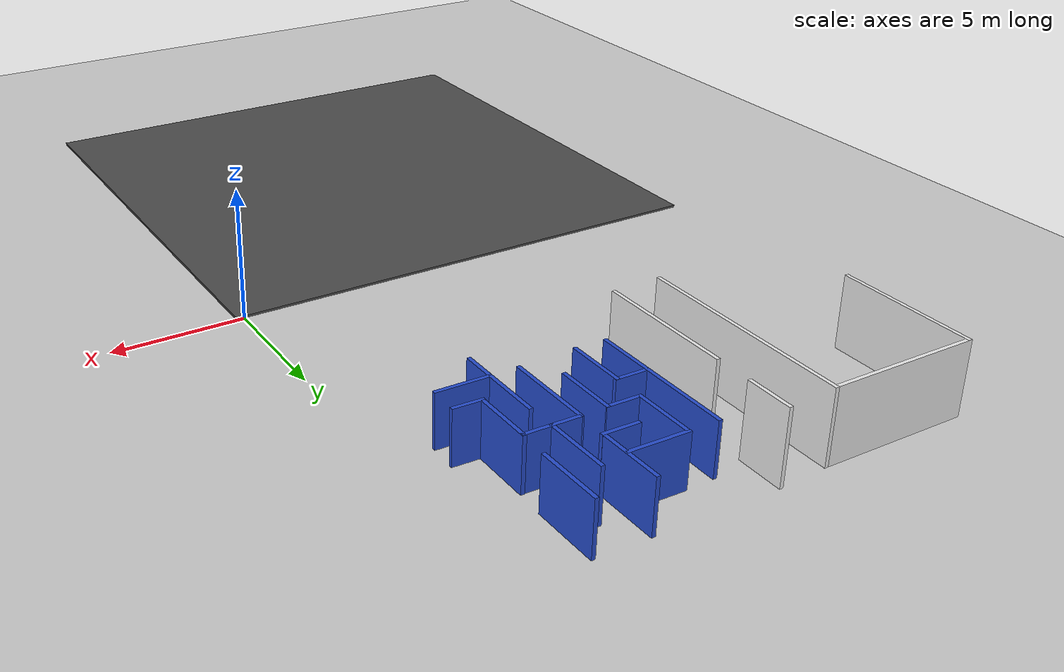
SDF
<sdf version="1.7">
 <world name="default">
  <model name="ground_plane">
   <static>1</static>
   <link name="link">
    <collision name="collision">
     <geometry><plane><normal>0 0 1</normal><size>100 100</size></plane></geometry>
     <surface><friction><ode><mu>100</mu><mu2>50</mu2></ode></friction></surface>
    </collision>
    <visual name="visual">
     <cast_shadows>0</cast_shadows>
     <geometry><plane><normal>0 0 1</normal><size>100 100</size></plane></geometry>
     <material>
      <script><uri>file://media/materials/scripts/gazebo.material</uri><name>Gazebo/Grey</name></script>
     </material>
    </visual>
    <velocity_decay><linear>0</linear><angular>0</angular></velocity_decay>
   </link>
  </model>
  <model name="asphalt_plane">
   <static>1</static>
   <link name="link">
    <collision name="collision"><geometry><box><size>20 20 0.1</size></box></geometry></collision>
    <visual name="visual">
     <cast_shadows>0</cast_shadows>
     <geometry><box><size>20 20 0.1</size></box></geometry>
     <material>
      <script>
       <uri>model://asphalt_plane/materials/scripts</uri>
       <uri>model://asphalt_plane/materials/textures</uri>
       <name>vrc/asphalt</name>
      </script>
     </material>
    </visual>
   </link>
   <pose>-9.73878 -10.1135 0 0 -0 0</pose>
  </model>
  <model name="white_wall18">
   <link name="link">
    <inertial>
     <mass>1</mass>
     <inertia>
      <ixx>0.166667</ixx>
      <ixy>0</ixy>
      <ixz>0</ixz>
      <iyy>0.166667</iyy>
      <iyz>0</iyz>
      <izz>0.166667</izz>
     </inertia>
    </inertial>
    <visual name="visual">
     <geometry><box><size>8.26846 0.139088 2.78993</size></box></geometry>
     <material>
      <script><name>Gazebo/White</name><uri>file://media/materials/scripts/gazebo.material</uri></script>
      <shader type="vertex"><normal_map>__default__</normal_map></shader>
      <ambient>1 1 1 1</ambient>
      <diffuse>1 1 1 1</diffuse>
      <specular>0 0 0 1</specular>
      <emissive>0 0 0 1</emissive>
     </material>
    </visual>
    <collision name="collision">
     <geometry><box><size>8.26846 0.139088 2.78993</size></box></geometry>
     <surface>
      <friction>
       <ode><mu>1</mu><mu2>1</mu2><fdir1>0 0 0</fdir1><slip1>0</slip1><slip2>0</slip2></ode>
       <torsional>
        <coefficient>1</coefficient>
        <patch_radius>0</patch_radius>
        <surface_radius>0</surface_radius>
        <use_patch_radius>1</use_patch_radius>
        <ode><slip>0</slip></ode>
       </torsional>
      </friction>
      <bounce><restitution_coefficient>0</restitution_coefficient><threshold>1e+06</threshold></bounce>
      <contact>
       <collide_without_contact>0</collide_without_contact>
       <collide_without_contact_bitmask>1</collide_without_contact_bitmask>
       <collide_bitmask>1</collide_bitmask>
       <ode>
        <soft_cfm>0</soft_cfm>
        <soft_erp>0.2</soft_erp>
        <kp>1e+13</kp>
        <kd>1</kd>
        <max_vel>0.01</max_vel>
        <min_depth>0</min_depth>
       </ode>
       <bullet>
        <split_impulse>1</split_impulse>
        <split_impulse_penetration_threshold>-0.01</split_impulse_penetration_threshold>
        <soft_cfm>0</soft_cfm>
        <soft_erp>0.2</soft_erp>
        <kp>1e+13</kp>
        <kd>1</kd>
       </bullet>
      </contact>
     </surface>
    </collision>
   </link>
   <static>1</static>
   <pose>-11.215 13.3404 1.43998 4e-06 1e-06 1.56978</pose>
  </model>
  <model name="white_wall15_clone_clone">
   <link name="link">
    <inertial>
     <mass>1</mass>
     <inertia>
      <ixx>0.166667</ixx>
      <ixy>0</ixy>
      <ixz>0</ixz>
      <iyy>0.166667</iyy>
      <iyz>0</iyz>
      <izz>0.166667</izz>
     </inertia>
    </inertial>
    <visual name="visual">
     <geometry><box><size>5.7215 0.139088 2.78993</size></box></geometry>
     <material>
      <script><name>Gazebo/White</name><uri>file://media/materials/scripts/gazebo.material</uri></script>
      <shader type="vertex"><normal_map>__default__</normal_map></shader>
      <ambient>1 1 1 1</ambient>
      <diffuse>1 1 1 1</diffuse>
      <specular>0 0 0 1</specular>
      <emissive>0 0 0 1</emissive>
     </material>
    </visual>
    <collision name="collision">
     <geometry><box><size>5.7215 0.139088 2.78993</size></box></geometry>
     <surface>
      <friction>
       <ode><mu>1</mu><mu2>1</mu2><fdir1>0 0 0</fdir1><slip1>0</slip1><slip2>0</slip2></ode>
       <torsional>
        <coefficient>1</coefficient>
        <patch_radius>0</patch_radius>
        <surface_radius>0</surface_radius>
        <use_patch_radius>1</use_patch_radius>
        <ode><slip>0</slip></ode>
       </torsional>
      </friction>
      <bounce><restitution_coefficient>0</restitution_coefficient><threshold>1e+06</threshold></bounce>
      <contact>
       <collide_without_contact>0</collide_without_contact>
       <collide_without_contact_bitmask>1</collide_without_contact_bitmask>
       <collide_bitmask>1</collide_bitmask>
       <ode>
        <soft_cfm>0</soft_cfm>
        <soft_erp>0.2</soft_erp>
        <kp>1e+13</kp>
        <kd>1</kd>
        <max_vel>0.01</max_vel>
        <min_depth>0</min_depth>
       </ode>
       <bullet>
        <split_impulse>1</split_impulse>
        <split_impulse_penetration_threshold>-0.01</split_impulse_penetration_threshold>
        <soft_cfm>0</soft_cfm>
        <soft_erp>0.2</soft_erp>
        <kp>1e+13</kp>
        <kd>1</kd>
       </bullet>
      </contact>
     </surface>
    </collision>
   </link>
   <static>1</static>
   <pose>-14.0062 17.4045 1.43994 -1e-06 4e-06 -0.000759</pose>
  </model>
  <model name="white_wall19">
   <link name="link">
    <inertial>
     <mass>1</mass>
     <inertia>
      <ixx>0.166667</ixx>
      <ixy>0</ixy>
      <ixz>0</ixz>
      <iyy>0.166667</iyy>
      <iyz>0</iyz>
      <izz>0.166667</izz>
     </inertia>
    </inertial>
    <visual name="visual">
     <geometry><box><size>5.22248 0.139088 2.78993</size></box></geometry>
     <material>
      <script><name>Gazebo/White</name><uri>file://media/materials/scripts/gazebo.material</uri></script>
      <shader type="vertex"><normal_map>__default__</normal_map></shader>
      <ambient>1 1 1 1</ambient>
      <diffuse>1 1 1 1</diffuse>
      <specular>0 0 0 1</specular>
      <emissive>0 0 0 1</emissive>
     </material>
    </visual>
    <collision name="collision">
     <geometry><box><size>5.22248 0.139088 2.78993</size></box></geometry>
     <surface>
      <friction>
       <ode><mu>1</mu><mu2>1</mu2><fdir1>0 0 0</fdir1><slip1>0</slip1><slip2>0</slip2></ode>
       <torsional>
        <coefficient>1</coefficient>
        <patch_radius>0</patch_radius>
        <surface_radius>0</surface_radius>
        <use_patch_radius>1</use_patch_radius>
        <ode><slip>0</slip></ode>
       </torsional>
      </friction>
      <bounce><restitution_coefficient>0</restitution_coefficient><threshold>1e+06</threshold></bounce>
      <contact>
       <collide_without_contact>0</collide_without_contact>
       <collide_without_contact_bitmask>1</collide_without_contact_bitmask>
       <collide_bitmask>1</collide_bitmask>
       <ode>
        <soft_cfm>0</soft_cfm>
        <soft_erp>0.2</soft_erp>
        <kp>1e+13</kp>
        <kd>1</kd>
        <max_vel>0.01</max_vel>
        <min_depth>0</min_depth>
       </ode>
       <bullet>
        <split_impulse>1</split_impulse>
        <split_impulse_penetration_threshold>-0.01</split_impulse_penetration_threshold>
        <soft_cfm>0</soft_cfm>
        <soft_erp>0.2</soft_erp>
        <kp>1e+13</kp>
        <kd>1</kd>
       </bullet>
      </contact>
     </surface>
    </collision>
   </link>
   <static>1</static>
   <pose>-16.8039 14.8534 1.43998 4e-06 1e-06 1.56978</pose>
  </model>
  <model name="white_wall19_clone">
   <link name="link">
    <inertial>
     <mass>1</mass>
     <inertia>
      <ixx>0.166667</ixx>
      <ixy>0</ixy>
      <ixz>0</ixz>
      <iyy>0.166667</iyy>
      <iyz>0</iyz>
      <izz>0.166667</izz>
     </inertia>
    </inertial>
    <visual name="visual">
     <geometry><box><size>5.22248 0.139088 2.78993</size></box></geometry>
     <material>
      <script><name>Gazebo/White</name><uri>file://media/materials/scripts/gazebo.material</uri></script>
      <shader type="vertex"><normal_map>__default__</normal_map></shader>
      <ambient>1 1 1 1</ambient>
      <diffuse>1 1 1 1</diffuse>
      <specular>0 0 0 1</specular>
      <emissive>0 0 0 1</emissive>
     </material>
    </visual>
    <collision name="collision">
     <geometry><box><size>5.22248 0.139088 2.78993</size></box></geometry>
     <surface>
      <friction>
       <ode><mu>1</mu><mu2>1</mu2><fdir1>0 0 0</fdir1><slip1>0</slip1><slip2>0</slip2></ode>
       <torsional>
        <coefficient>1</coefficient>
        <patch_radius>0</patch_radius>
        <surface_radius>0</surface_radius>
        <use_patch_radius>1</use_patch_radius>
        <ode><slip>0</slip></ode>
       </torsional>
      </friction>
      <bounce><restitution_coefficient>0</restitution_coefficient><threshold>1e+06</threshold></bounce>
      <contact>
       <collide_without_contact>0</collide_without_contact>
       <collide_without_contact_bitmask>1</collide_without_contact_bitmask>
       <collide_bitmask>1</collide_bitmask>
       <ode>
        <soft_cfm>0</soft_cfm>
        <soft_erp>0.2</soft_erp>
        <kp>1e+13</kp>
        <kd>1</kd>
        <max_vel>0.01</max_vel>
        <min_depth>0</min_depth>
       </ode>
       <bullet>
        <split_impulse>1</split_impulse>
        <split_impulse_penetration_threshold>-0.01</split_impulse_penetration_threshold>
        <soft_cfm>0</soft_cfm>
        <soft_erp>0.2</soft_erp>
        <kp>1e+13</kp>
        <kd>1</kd>
       </bullet>
      </contact>
     </surface>
    </collision>
   </link>
   <static>1</static>
   <pose>-9.314 11.857 1.43998 4e-06 1e-06 1.56978</pose>
  </model>
  <model name="white_wall3_clone_clone_2_clone">
   <link name="link">
    <inertial>
     <mass>1</mass>
     <inertia>
      <ixx>0.166667</ixx>
      <ixy>0</ixy>
      <ixz>0</ixz>
      <iyy>0.166667</iyy>
      <iyz>0</iyz>
      <izz>0.166667</izz>
     </inertia>
    </inertial>
    <visual name="visual">
     <geometry><box><size>1.77743 0.139088 2.78993</size></box></geometry>
     <material>
      <script><name>Gazebo/White</name><uri>file://media/materials/scripts/gazebo.material</uri></script>
      <shader type="vertex"><normal_map>__default__</normal_map></shader>
      <ambient>1 1 1 1</ambient>
      <diffuse>1 1 1 1</diffuse>
      <specular>0 0 0 1</specular>
      <emissive>0 0 0 1</emissive>
     </material>
    </visual>
    <collision name="collision">
     <geometry><box><size>1.77743 0.139088 2.78993</size></box></geometry>
     <surface>
      <friction>
       <ode><mu>1</mu><mu2>1</mu2><fdir1>0 0 0</fdir1><slip1>0</slip1><slip2>0</slip2></ode>
       <torsional>
        <coefficient>1</coefficient>
        <patch_radius>0</patch_radius>
        <surface_radius>0</surface_radius>
        <use_patch_radius>1</use_patch_radius>
        <ode><slip>0</slip></ode>
       </torsional>
      </friction>
      <bounce><restitution_coefficient>0</restitution_coefficient><threshold>1e+06</threshold></bounce>
      <contact>
       <collide_without_contact>0</collide_without_contact>
       <collide_without_contact_bitmask>1</collide_without_contact_bitmask>
       <collide_bitmask>1</collide_bitmask>
       <ode>
        <soft_cfm>0</soft_cfm>
        <soft_erp>0.2</soft_erp>
        <kp>1e+13</kp>
        <kd>1</kd>
        <max_vel>0.01</max_vel>
        <min_depth>0</min_depth>
       </ode>
       <bullet>
        <split_impulse>1</split_impulse>
        <split_impulse_penetration_threshold>-0.01</split_impulse_penetration_threshold>
        <soft_cfm>0</soft_cfm>
        <soft_erp>0.2</soft_erp>
        <kp>1e+13</kp>
        <kd>1</kd>
       </bullet>
      </contact>
     </surface>
    </collision>
   </link>
   <static>1</static>
   <pose>-9.30073 16.7187 1.43995 4e-06 1e-06 1.56402</pose>
  </model>
  <model name="blue_wall_1_0">
   <link name="link">
    <inertial>
     <mass>1.23974</mass>
     <inertia>
      <ixx>1.75708</ixx>
      <ixy>0</ixy>
      <ixz>0</ixz>
      <iyy>0.935051</iyy>
      <iyz>0</iyz>
      <izz>0.826375</izz>
     </inertia>
    </inertial>
    <visual name="visual">
     <geometry><box><size>0.145074 5.58767 3.00495</size></box></geometry>
     <material>
      <script><name>Gazebo/Blue</name><uri>file://media/materials/scripts/gazebo.material</uri></script>
      <shader type="vertex"><normal_map>__default__</normal_map></shader>
      <ambient>0 0 1 1</ambient>
      <diffuse>0 0 1 1</diffuse>
      <specular>0.1 0.1 0.1 1</specular>
      <emissive>0 0 0 1</emissive>
     </material>
    </visual>
    <collision name="collision">
     <geometry><box><size>0.145074 5.58767 3.00495</size></box></geometry>
     <surface>
      <friction>
       <ode><mu>1</mu><mu2>1</mu2><fdir1>0 0 0</fdir1><slip1>0</slip1><slip2>0</slip2></ode>
       <torsional>
        <coefficient>1</coefficient>
        <patch_radius>0</patch_radius>
        <surface_radius>0</surface_radius>
        <use_patch_radius>1</use_patch_radius>
        <ode><slip>0</slip></ode>
       </torsional>
      </friction>
      <bounce><restitution_coefficient>0</restitution_coefficient><threshold>1e+06</threshold></bounce>
      <contact>
       <collide_without_contact>0</collide_without_contact>
       <collide_without_contact_bitmask>1</collide_without_contact_bitmask>
       <collide_bitmask>1</collide_bitmask>
       <ode>
        <soft_cfm>0</soft_cfm>
        <soft_erp>0.2</soft_erp>
        <kp>1e+13</kp>
        <kd>1</kd>
        <max_vel>0.01</max_vel>
        <min_depth>0</min_depth>
       </ode>
       <bullet>
        <split_impulse>1</split_impulse>
        <split_impulse_penetration_threshold>-0.01</split_impulse_penetration_threshold>
        <soft_cfm>0</soft_cfm>
        <soft_erp>0.2</soft_erp>
        <kp>1e+13</kp>
        <kd>1</kd>
       </bullet>
      </contact>
     </surface>
    </collision>
   </link>
   <static>1</static>
   <pose>-8.03676 13.3623 0.5 0 -0 0</pose>
  </model>
  <model name="blue_wall_2_0">
   <link name="link">
    <inertial>
     <mass>1.23974</mass>
     <inertia>
      <ixx>1.75708</ixx>
      <ixy>0</ixy>
      <ixz>0</ixz>
      <iyy>0.935051</iyy>
      <iyz>0</iyz>
      <izz>0.826375</izz>
     </inertia>
    </inertial>
    <visual name="visual">
     <geometry><box><size>0.145074 2.28839 3.00495</size></box></geometry>
     <material>
      <script><name>Gazebo/Blue</name><uri>file://media/materials/scripts/gazebo.material</uri></script>
      <shader type="vertex"><normal_map>__default__</normal_map></shader>
      <ambient>0 0 1 1</ambient>
      <diffuse>0 0 1 1</diffuse>
      <specular>0.1 0.1 0.1 1</specular>
      <emissive>0 0 0 1</emissive>
     </material>
    </visual>
    <collision name="collision">
     <geometry><box><size>0.145074 2.28839 3.00495</size></box></geometry>
     <surface>
      <friction>
       <ode><mu>1</mu><mu2>1</mu2><fdir1>0 0 0</fdir1><slip1>0</slip1><slip2>0</slip2></ode>
       <torsional>
        <coefficient>1</coefficient>
        <patch_radius>0</patch_radius>
        <surface_radius>0</surface_radius>
        <use_patch_radius>1</use_patch_radius>
        <ode><slip>0</slip></ode>
       </torsional>
      </friction>
      <bounce><restitution_coefficient>0</restitution_coefficient><threshold>1e+06</threshold></bounce>
      <contact>
       <collide_without_contact>0</collide_without_contact>
       <collide_without_contact_bitmask>1</collide_without_contact_bitmask>
       <collide_bitmask>1</collide_bitmask>
       <ode>
        <soft_cfm>0</soft_cfm>
        <soft_erp>0.2</soft_erp>
        <kp>1e+13</kp>
        <kd>1</kd>
        <max_vel>0.01</max_vel>
        <min_depth>0</min_depth>
       </ode>
       <bullet>
        <split_impulse>1</split_impulse>
        <split_impulse_penetration_threshold>-0.01</split_impulse_penetration_threshold>
        <soft_cfm>0</soft_cfm>
        <soft_erp>0.2</soft_erp>
        <kp>1e+13</kp>
        <kd>1</kd>
       </bullet>
      </contact>
     </surface>
    </collision>
   </link>
   <static>1</static>
   <pose>-6.87676 11.6612 0.5 0 -0 0</pose>
  </model>
  <model name="blue_wall_3">
   <link name="link">
    <inertial>
     <mass>1.23974</mass>
     <inertia>
      <ixx>1.75708</ixx>
      <ixy>0</ixy>
      <ixz>0</ixz>
      <iyy>0.935051</iyy>
      <iyz>0</iyz>
      <izz>0.826375</izz>
     </inertia>
    </inertial>
    <visual name="visual">
     <geometry><box><size>0.145074 1.30289 3.00495</size></box></geometry>
     <material>
      <script><name>Gazebo/Blue</name><uri>file://media/materials/scripts/gazebo.material</uri></script>
      <shader type="vertex"><normal_map>__default__</normal_map></shader>
      <ambient>0 0 1 1</ambient>
      <diffuse>0 0 1 1</diffuse>
      <specular>0.1 0.1 0.1 1</specular>
      <emissive>0 0 0 1</emissive>
     </material>
    </visual>
    <collision name="collision">
     <geometry><box><size>0.145074 1.30289 3.00495</size></box></geometry>
     <surface>
      <friction>
       <ode><mu>1</mu><mu2>1</mu2><fdir1>0 0 0</fdir1><slip1>0</slip1><slip2>0</slip2></ode>
       <torsional>
        <coefficient>1</coefficient>
        <patch_radius>0</patch_radius>
        <surface_radius>0</surface_radius>
        <use_patch_radius>1</use_patch_radius>
        <ode><slip>0</slip></ode>
       </torsional>
      </friction>
      <bounce><restitution_coefficient>0</restitution_coefficient><threshold>1e+06</threshold></bounce>
      <contact>
       <collide_without_contact>0</collide_without_contact>
       <collide_without_contact_bitmask>1</collide_without_contact_bitmask>
       <collide_bitmask>1</collide_bitmask>
       <ode>
        <soft_cfm>0</soft_cfm>
        <soft_erp>0.2</soft_erp>
        <kp>1e+13</kp>
        <kd>1</kd>
        <max_vel>0.01</max_vel>
        <min_depth>0</min_depth>
       </ode>
       <bullet>
        <split_impulse>1</split_impulse>
        <split_impulse_penetration_threshold>-0.01</split_impulse_penetration_threshold>
        <soft_cfm>0</soft_cfm>
        <soft_erp>0.2</soft_erp>
        <kp>1e+13</kp>
        <kd>1</kd>
       </bullet>
      </contact>
     </surface>
    </collision>
   </link>
   <static>1</static>
   <pose>-7.44047 12.7488 0.5 0 -0 1.55679</pose>
  </model>
  <model name="blue_wall_4">
   <link name="link">
    <inertial>
     <mass>1.23974</mass>
     <inertia>
      <ixx>1.75708</ixx>
      <ixy>0</ixy>
      <ixz>0</ixz>
      <iyy>0.935051</iyy>
      <iyz>0</iyz>
      <izz>0.826375</izz>
     </inertia>
    </inertial>
    <visual name="visual">
     <geometry><box><size>0.145074 2.27049 3.00495</size></box></geometry>
     <material>
      <script><name>Gazebo/Blue</name><uri>file://media/materials/scripts/gazebo.material</uri></script>
      <shader type="vertex"><normal_map>__default__</normal_map></shader>
      <ambient>0 0 1 1</ambient>
      <diffuse>0 0 1 1</diffuse>
      <specular>0.1 0.1 0.1 1</specular>
      <emissive>0 0 0 1</emissive>
     </material>
    </visual>
    <collision name="collision">
     <geometry><box><size>0.145074 2.27049 3.00495</size></box></geometry>
     <surface>
      <friction>
       <ode><mu>1</mu><mu2>1</mu2><fdir1>0 0 0</fdir1><slip1>0</slip1><slip2>0</slip2></ode>
       <torsional>
        <coefficient>1</coefficient>
        <patch_radius>0</patch_radius>
        <surface_radius>0</surface_radius>
        <use_patch_radius>1</use_patch_radius>
        <ode><slip>0</slip></ode>
       </torsional>
      </friction>
      <bounce><restitution_coefficient>0</restitution_coefficient><threshold>1e+06</threshold></bounce>
      <contact>
       <collide_without_contact>0</collide_without_contact>
       <collide_without_contact_bitmask>1</collide_without_contact_bitmask>
       <collide_bitmask>1</collide_bitmask>
       <ode>
        <soft_cfm>0</soft_cfm>
        <soft_erp>0.2</soft_erp>
        <kp>1e+13</kp>
        <kd>1</kd>
        <max_vel>0.01</max_vel>
        <min_depth>0</min_depth>
       </ode>
       <bullet>
        <split_impulse>1</split_impulse>
        <split_impulse_penetration_threshold>-0.01</split_impulse_penetration_threshold>
        <soft_cfm>0</soft_cfm>
        <soft_erp>0.2</soft_erp>
        <kp>1e+13</kp>
        <kd>1</kd>
       </bullet>
      </contact>
     </surface>
    </collision>
   </link>
   <static>1</static>
   <pose>-6.87353 14.9517 0.5 0 -0 0</pose>
  </model>
  <model name="blue_wall_3_clone">
   <link name="link">
    <inertial>
     <mass>1.23974</mass>
     <inertia>
      <ixx>1.75708</ixx>
      <ixy>0</ixy>
      <ixz>0</ixz>
      <iyy>0.935051</iyy>
      <iyz>0</iyz>
      <izz>0.826375</izz>
     </inertia>
    </inertial>
    <visual name="visual">
     <geometry><box><size>0.145074 1.30289 3.00495</size></box></geometry>
     <material>
      <script><name>Gazebo/Blue</name><uri>file://media/materials/scripts/gazebo.material</uri></script>
      <shader type="vertex"><normal_map>__default__</normal_map></shader>
      <ambient>0 0 1 1</ambient>
      <diffuse>0 0 1 1</diffuse>
      <specular>0.1 0.1 0.1 1</specular>
      <emissive>0 0 0 1</emissive>
     </material>
    </visual>
    <collision name="collision">
     <geometry><box><size>0.145074 1.30289 3.00495</size></box></geometry>
     <surface>
      <friction>
       <ode><mu>1</mu><mu2>1</mu2><fdir1>0 0 0</fdir1><slip1>0</slip1><slip2>0</slip2></ode>
       <torsional>
        <coefficient>1</coefficient>
        <patch_radius>0</patch_radius>
        <surface_radius>0</surface_radius>
        <use_patch_radius>1</use_patch_radius>
        <ode><slip>0</slip></ode>
       </torsional>
      </friction>
      <bounce><restitution_coefficient>0</restitution_coefficient><threshold>1e+06</threshold></bounce>
      <contact>
       <collide_without_contact>0</collide_without_contact>
       <collide_without_contact_bitmask>1</collide_without_contact_bitmask>
       <collide_bitmask>1</collide_bitmask>
       <ode>
        <soft_cfm>0</soft_cfm>
        <soft_erp>0.2</soft_erp>
        <kp>1e+13</kp>
        <kd>1</kd>
        <max_vel>0.01</max_vel>
        <min_depth>0</min_depth>
       </ode>
       <bullet>
        <split_impulse>1</split_impulse>
        <split_impulse_penetration_threshold>-0.01</split_impulse_penetration_threshold>
        <soft_cfm>0</soft_cfm>
        <soft_erp>0.2</soft_erp>
        <kp>1e+13</kp>
        <kd>1</kd>
       </bullet>
      </contact>
     </surface>
    </collision>
   </link>
   <static>1</static>
   <pose>-6.24855 13.8791 0.5 0 -0 1.55679</pose>
  </model>
  <model name="blue_wall_2_0_clone_0">
   <link name="link">
    <inertial>
     <mass>1.23974</mass>
     <inertia>
      <ixx>1.75708</ixx>
      <ixy>0</ixy>
      <ixz>0</ixz>
      <iyy>0.935051</iyy>
      <iyz>0</iyz>
      <izz>0.826375</izz>
     </inertia>
    </inertial>
    <visual name="visual">
     <geometry><box><size>0.145074 2.28839 3.00495</size></box></geometry>
     <material>
      <script><name>Gazebo/Blue</name><uri>file://media/materials/scripts/gazebo.material</uri></script>
      <shader type="vertex"><normal_map>__default__</normal_map></shader>
      <ambient>0 0 1 1</ambient>
      <diffuse>0 0 1 1</diffuse>
      <specular>0.1 0.1 0.1 1</specular>
      <emissive>0 0 0 1</emissive>
     </material>
    </visual>
    <collision name="collision">
     <geometry><box><size>0.145074 2.28839 3.00495</size></box></geometry>
     <surface>
      <friction>
       <ode><mu>1</mu><mu2>1</mu2><fdir1>0 0 0</fdir1><slip1>0</slip1><slip2>0</slip2></ode>
       <torsional>
        <coefficient>1</coefficient>
        <patch_radius>0</patch_radius>
        <surface_radius>0</surface_radius>
        <use_patch_radius>1</use_patch_radius>
        <ode><slip>0</slip></ode>
       </torsional>
      </friction>
      <bounce><restitution_coefficient>0</restitution_coefficient><threshold>1e+06</threshold></bounce>
      <contact>
       <collide_without_contact>0</collide_without_contact>
       <collide_without_contact_bitmask>1</collide_without_contact_bitmask>
       <collide_bitmask>1</collide_bitmask>
       <ode>
        <soft_cfm>0</soft_cfm>
        <soft_erp>0.2</soft_erp>
        <kp>1e+13</kp>
        <kd>1</kd>
        <max_vel>0.01</max_vel>
        <min_depth>0</min_depth>
       </ode>
       <bullet>
        <split_impulse>1</split_impulse>
        <split_impulse_penetration_threshold>-0.01</split_impulse_penetration_threshold>
        <soft_cfm>0</soft_cfm>
        <soft_erp>0.2</soft_erp>
        <kp>1e+13</kp>
        <kd>1</kd>
       </bullet>
      </contact>
     </surface>
    </collision>
   </link>
   <static>1</static>
   <pose>-5.66948 12.7849 0.5 0 -0 0</pose>
  </model>
  <model name="blue_wall_6">
   <link name="link">
    <inertial>
     <mass>1.23974</mass>
     <inertia>
      <ixx>1.75708</ixx>
      <ixy>0</ixy>
      <ixz>0</ixz>
      <iyy>0.935051</iyy>
      <iyz>0</iyz>
      <izz>0.826375</izz>
     </inertia>
    </inertial>
    <visual name="visual">
     <geometry><box><size>0.145074 2.28942 3.00495</size></box></geometry>
     <material>
      <script><name>Gazebo/Blue</name><uri>file://media/materials/scripts/gazebo.material</uri></script>
      <shader type="vertex"><normal_map>__default__</normal_map></shader>
      <ambient>0 0 1 1</ambient>
      <diffuse>0 0 1 1</diffuse>
      <specular>0.1 0.1 0.1 1</specular>
      <emissive>0 0 0 1</emissive>
     </material>
    </visual>
    <collision name="collision">
     <geometry><box><size>0.145074 2.28942 3.00495</size></box></geometry>
     <surface>
      <friction>
       <ode><mu>1</mu><mu2>1</mu2><fdir1>0 0 0</fdir1><slip1>0</slip1><slip2>0</slip2></ode>
       <torsional>
        <coefficient>1</coefficient>
        <patch_radius>0</patch_radius>
        <surface_radius>0</surface_radius>
        <use_patch_radius>1</use_patch_radius>
        <ode><slip>0</slip></ode>
       </torsional>
      </friction>
      <bounce><restitution_coefficient>0</restitution_coefficient><threshold>1e+06</threshold></bounce>
      <contact>
       <collide_without_contact>0</collide_without_contact>
       <collide_without_contact_bitmask>1</collide_without_contact_bitmask>
       <collide_bitmask>1</collide_bitmask>
       <ode>
        <soft_cfm>0</soft_cfm>
        <soft_erp>0.2</soft_erp>
        <kp>1e+13</kp>
        <kd>1</kd>
        <max_vel>0.01</max_vel>
        <min_depth>0</min_depth>
       </ode>
       <bullet>
        <split_impulse>1</split_impulse>
        <split_impulse_penetration_threshold>-0.01</split_impulse_penetration_threshold>
        <soft_cfm>0</soft_cfm>
        <soft_erp>0.2</soft_erp>
        <kp>1e+13</kp>
        <kd>1</kd>
       </bullet>
      </contact>
     </surface>
    </collision>
   </link>
   <static>1</static>
   <pose>-5.80282 16.1066 0.5 0 -0 1.55679</pose>
  </model>
  <model name="blue_wall_7">
   <link name="link">
    <inertial>
     <mass>1.23974</mass>
     <inertia>
      <ixx>1.75708</ixx>
      <ixy>0</ixy>
      <ixz>0</ixz>
      <iyy>0.935051</iyy>
      <iyz>0</iyz>
      <izz>0.826375</izz>
     </inertia>
    </inertial>
    <visual name="visual">
     <geometry><box><size>0.145074 3.37746 3.00495</size></box></geometry>
     <material>
      <script><name>Gazebo/Blue</name><uri>file://media/materials/scripts/gazebo.material</uri></script>
      <shader type="vertex"><normal_map>__default__</normal_map></shader>
      <ambient>0 0 1 1</ambient>
      <diffuse>0 0 1 1</diffuse>
      <specular>0.1 0.1 0.1 1</specular>
      <emissive>0 0 0 1</emissive>
     </material>
    </visual>
    <collision name="collision">
     <geometry><box><size>0.145074 3.37746 3.00495</size></box></geometry>
     <surface>
      <friction>
       <ode><mu>1</mu><mu2>1</mu2><fdir1>0 0 0</fdir1><slip1>0</slip1><slip2>0</slip2></ode>
       <torsional>
        <coefficient>1</coefficient>
        <patch_radius>0</patch_radius>
        <surface_radius>0</surface_radius>
        <use_patch_radius>1</use_patch_radius>
        <ode><slip>0</slip></ode>
       </torsional>
      </friction>
      <bounce><restitution_coefficient>0</restitution_coefficient><threshold>1e+06</threshold></bounce>
      <contact>
       <collide_without_contact>0</collide_without_contact>
       <collide_without_contact_bitmask>1</collide_without_contact_bitmask>
       <collide_bitmask>1</collide_bitmask>
       <ode>
        <soft_cfm>0</soft_cfm>
        <soft_erp>0.2</soft_erp>
        <kp>1e+13</kp>
        <kd>1</kd>
        <max_vel>0.01</max_vel>
        <min_depth>0</min_depth>
       </ode>
       <bullet>
        <split_impulse>1</split_impulse>
        <split_impulse_penetration_threshold>-0.01</split_impulse_penetration_threshold>
        <soft_cfm>0</soft_cfm>
        <soft_erp>0.2</soft_erp>
        <kp>1e+13</kp>
        <kd>1</kd>
       </bullet>
      </contact>
     </surface>
    </collision>
   </link>
   <static>1</static>
   <pose>-4.68429 12.282 0.5 0 -0 0</pose>
  </model>
  <model name="blue_wall_5">
   <link name="link">
    <inertial>
     <mass>1.23974</mass>
     <inertia>
      <ixx>1.75708</ixx>
      <ixy>0</ixy>
      <ixz>0</ixz>
      <iyy>0.935051</iyy>
      <iyz>0</iyz>
      <izz>0.826375</izz>
     </inertia>
    </inertial>
    <visual name="visual">
     <geometry><box><size>0.145074 1.38593 3.00495</size></box></geometry>
     <material>
      <script><name>Gazebo/Blue</name><uri>file://media/materials/scripts/gazebo.material</uri></script>
      <shader type="vertex"><normal_map>__default__</normal_map></shader>
      <ambient>0 0 1 1</ambient>
      <diffuse>0 0 1 1</diffuse>
      <specular>0.1 0.1 0.1 1</specular>
      <emissive>0 0 0 1</emissive>
     </material>
    </visual>
    <collision name="collision">
     <geometry><box><size>0.145074 1.38593 3.00495</size></box></geometry>
     <surface>
      <friction>
       <ode><mu>1</mu><mu2>1</mu2><fdir1>0 0 0</fdir1><slip1>0</slip1><slip2>0</slip2></ode>
       <torsional>
        <coefficient>1</coefficient>
        <patch_radius>0</patch_radius>
        <surface_radius>0</surface_radius>
        <use_patch_radius>1</use_patch_radius>
        <ode><slip>0</slip></ode>
       </torsional>
      </friction>
      <bounce><restitution_coefficient>0</restitution_coefficient><threshold>1e+06</threshold></bounce>
      <contact>
       <collide_without_contact>0</collide_without_contact>
       <collide_without_contact_bitmask>1</collide_without_contact_bitmask>
       <collide_bitmask>1</collide_bitmask>
       <ode>
        <soft_cfm>0</soft_cfm>
        <soft_erp>0.2</soft_erp>
        <kp>1e+13</kp>
        <kd>1</kd>
        <max_vel>0.01</max_vel>
        <min_depth>0</min_depth>
       </ode>
       <bullet>
        <split_impulse>1</split_impulse>
        <split_impulse_penetration_threshold>-0.01</split_impulse_penetration_threshold>
        <soft_cfm>0</soft_cfm>
        <soft_erp>0.2</soft_erp>
        <kp>1e+13</kp>
        <kd>1</kd>
       </bullet>
      </contact>
     </surface>
    </collision>
   </link>
   <static>1</static>
   <pose>-5.28893 15.0192 0.5 0 -0 1.55679</pose>
  </model>
  <model name="blue_wall_8">
   <link name="link">
    <inertial>
     <mass>1.23974</mass>
     <inertia>
      <ixx>1.75708</ixx>
      <ixy>0</ixy>
      <ixz>0</ixz>
      <iyy>0.935051</iyy>
      <iyz>0</iyz>
      <izz>0.826375</izz>
     </inertia>
    </inertial>
    <visual name="visual">
     <geometry><box><size>0.145074 2.49484 3.00495</size></box></geometry>
     <material>
      <script><name>Gazebo/Blue</name><uri>file://media/materials/scripts/gazebo.material</uri></script>
      <shader type="vertex"><normal_map>__default__</normal_map></shader>
      <ambient>0 0 1 1</ambient>
      <diffuse>0 0 1 1</diffuse>
      <specular>0.1 0.1 0.1 1</specular>
      <emissive>0 0 0 1</emissive>
     </material>
    </visual>
    <collision name="collision">
     <geometry><box><size>0.145074 2.49484 3.00495</size></box></geometry>
     <surface>
      <friction>
       <ode><mu>1</mu><mu2>1</mu2><fdir1>0 0 0</fdir1><slip1>0</slip1><slip2>0</slip2></ode>
       <torsional>
        <coefficient>1</coefficient>
        <patch_radius>0</patch_radius>
        <surface_radius>0</surface_radius>
        <use_patch_radius>1</use_patch_radius>
        <ode><slip>0</slip></ode>
       </torsional>
      </friction>
      <bounce><restitution_coefficient>0</restitution_coefficient><threshold>1e+06</threshold></bounce>
      <contact>
       <collide_without_contact>0</collide_without_contact>
       <collide_without_contact_bitmask>1</collide_without_contact_bitmask>
       <collide_bitmask>1</collide_bitmask>
       <ode>
        <soft_cfm>0</soft_cfm>
        <soft_erp>0.2</soft_erp>
        <kp>1e+13</kp>
        <kd>1</kd>
        <max_vel>0.01</max_vel>
        <min_depth>0</min_depth>
       </ode>
       <bullet>
        <split_impulse>1</split_impulse>
        <split_impulse_penetration_threshold>-0.01</split_impulse_penetration_threshold>
        <soft_cfm>0</soft_cfm>
        <soft_erp>0.2</soft_erp>
        <kp>1e+13</kp>
        <kd>1</kd>
       </bullet>
      </contact>
     </surface>
    </collision>
   </link>
   <static>1</static>
   <pose>-4.68225 16.2367 0.5 0 0 -3.13185</pose>
  </model>
  <model name="blue_wall_8_clone">
   <link name="link">
    <inertial>
     <mass>1.23974</mass>
     <inertia>
      <ixx>1.75708</ixx>
      <ixy>0</ixy>
      <ixz>0</ixz>
      <iyy>0.935051</iyy>
      <iyz>0</iyz>
      <izz>0.826375</izz>
     </inertia>
    </inertial>
    <visual name="visual">
     <geometry><box><size>0.145074 2.49484 3.00495</size></box></geometry>
     <material>
      <script><name>Gazebo/Blue</name><uri>file://media/materials/scripts/gazebo.material</uri></script>
      <shader type="vertex"><normal_map>__default__</normal_map></shader>
      <ambient>0 0 1 1</ambient>
      <diffuse>0 0 1 1</diffuse>
      <specular>0.1 0.1 0.1 1</specular>
      <emissive>0 0 0 1</emissive>
     </material>
    </visual>
    <collision name="collision">
     <geometry><box><size>0.145074 2.49484 3.00495</size></box></geometry>
     <surface>
      <friction>
       <ode><mu>1</mu><mu2>1</mu2><fdir1>0 0 0</fdir1><slip1>0</slip1><slip2>0</slip2></ode>
       <torsional>
        <coefficient>1</coefficient>
        <patch_radius>0</patch_radius>
        <surface_radius>0</surface_radius>
        <use_patch_radius>1</use_patch_radius>
        <ode><slip>0</slip></ode>
       </torsional>
      </friction>
      <bounce><restitution_coefficient>0</restitution_coefficient><threshold>1e+06</threshold></bounce>
      <contact>
       <collide_without_contact>0</collide_without_contact>
       <collide_without_contact_bitmask>1</collide_without_contact_bitmask>
       <collide_bitmask>1</collide_bitmask>
       <ode>
        <soft_cfm>0</soft_cfm>
        <soft_erp>0.2</soft_erp>
        <kp>1e+13</kp>
        <kd>1</kd>
        <max_vel>0.01</max_vel>
        <min_depth>0</min_depth>
       </ode>
       <bullet>
        <split_impulse>1</split_impulse>
        <split_impulse_penetration_threshold>-0.01</split_impulse_penetration_threshold>
        <soft_cfm>0</soft_cfm>
        <soft_erp>0.2</soft_erp>
        <kp>1e+13</kp>
        <kd>1</kd>
       </bullet>
      </contact>
     </surface>
    </collision>
   </link>
   <static>1</static>
   <pose>-3.6805 15.0653 0.5 0 0 -3.13185</pose>
  </model>
  <model name="blue_wall_9_clone">
   <link name="link">
    <inertial>
     <mass>1.23974</mass>
     <inertia>
      <ixx>1.75708</ixx>
      <ixy>0</ixy>
      <ixz>0</ixz>
      <iyy>0.935051</iyy>
      <iyz>0</iyz>
      <izz>0.826375</izz>
     </inertia>
    </inertial>
    <visual name="visual">
     <geometry><box><size>0.145074 2.05737 3.00495</size></box></geometry>
     <material>
      <script><name>Gazebo/Blue</name><uri>file://media/materials/scripts/gazebo.material</uri></script>
      <shader type="vertex"><normal_map>__default__</normal_map></shader>
      <ambient>0 0 1 1</ambient>
      <diffuse>0 0 1 1</diffuse>
      <specular>0.1 0.1 0.1 1</specular>
      <emissive>0 0 0 1</emissive>
     </material>
    </visual>
    <collision name="collision">
     <geometry><box><size>0.145074 2.05737 3.00495</size></box></geometry>
     <surface>
      <friction>
       <ode><mu>1</mu><mu2>1</mu2><fdir1>0 0 0</fdir1><slip1>0</slip1><slip2>0</slip2></ode>
       <torsional>
        <coefficient>1</coefficient>
        <patch_radius>0</patch_radius>
        <surface_radius>0</surface_radius>
        <use_patch_radius>1</use_patch_radius>
        <ode><slip>0</slip></ode>
       </torsional>
      </friction>
      <bounce><restitution_coefficient>0</restitution_coefficient><threshold>1e+06</threshold></bounce>
      <contact>
       <collide_without_contact>0</collide_without_contact>
       <collide_without_contact_bitmask>1</collide_without_contact_bitmask>
       <collide_bitmask>1</collide_bitmask>
       <ode>
        <soft_cfm>0</soft_cfm>
        <soft_erp>0.2</soft_erp>
        <kp>1e+13</kp>
        <kd>1</kd>
        <max_vel>0.01</max_vel>
        <min_depth>0</min_depth>
       </ode>
       <bullet>
        <split_impulse>1</split_impulse>
        <split_impulse_penetration_threshold>-0.01</split_impulse_penetration_threshold>
        <soft_cfm>0</soft_cfm>
        <soft_erp>0.2</soft_erp>
        <kp>1e+13</kp>
        <kd>1</kd>
       </bullet>
      </contact>
     </surface>
    </collision>
   </link>
   <static>1</static>
   <pose>-2.66073 10.6374 0.5 0 -0 1.55679</pose>
  </model>
  <model name="blue_wall_9">
   <link name="link">
    <inertial>
     <mass>1.23974</mass>
     <inertia>
      <ixx>1.75708</ixx>
      <ixy>0</ixy>
      <ixz>0</ixz>
      <iyy>0.935051</iyy>
      <iyz>0</iyz>
      <izz>0.826375</izz>
     </inertia>
    </inertial>
    <visual name="visual">
     <geometry><box><size>0.145074 2.05737 3.00495</size></box></geometry>
     <material>
      <script><name>Gazebo/Blue</name><uri>file://media/materials/scripts/gazebo.material</uri></script>
      <shader type="vertex"><normal_map>__default__</normal_map></shader>
      <ambient>0 0 1 1</ambient>
      <diffuse>0 0 1 1</diffuse>
      <specular>0.1 0.1 0.1 1</specular>
      <emissive>0 0 0 1</emissive>
     </material>
    </visual>
    <collision name="collision">
     <geometry><box><size>0.145074 2.05737 3.00495</size></box></geometry>
     <surface>
      <friction>
       <ode><mu>1</mu><mu2>1</mu2><fdir1>0 0 0</fdir1><slip1>0</slip1><slip2>0</slip2></ode>
       <torsional>
        <coefficient>1</coefficient>
        <patch_radius>0</patch_radius>
        <surface_radius>0</surface_radius>
        <use_patch_radius>1</use_patch_radius>
        <ode><slip>0</slip></ode>
       </torsional>
      </friction>
      <bounce><restitution_coefficient>0</restitution_coefficient><threshold>1e+06</threshold></bounce>
      <contact>
       <collide_without_contact>0</collide_without_contact>
       <collide_without_contact_bitmask>1</collide_without_contact_bitmask>
       <collide_bitmask>1</collide_bitmask>
       <ode>
        <soft_cfm>0</soft_cfm>
        <soft_erp>0.2</soft_erp>
        <kp>1e+13</kp>
        <kd>1</kd>
        <max_vel>0.01</max_vel>
        <min_depth>0</min_depth>
       </ode>
       <bullet>
        <split_impulse>1</split_impulse>
        <split_impulse_penetration_threshold>-0.01</split_impulse_penetration_threshold>
        <soft_cfm>0</soft_cfm>
        <soft_erp>0.2</soft_erp>
        <kp>1e+13</kp>
        <kd>1</kd>
       </bullet>
      </contact>
     </surface>
    </collision>
   </link>
   <static>1</static>
   <pose>-3.66191 13.8923 0.5 0 -0 1.55679</pose>
  </model>
  <model name="blue_wall_3_clone_0_clone">
   <link name="link">
    <inertial>
     <mass>1.23974</mass>
     <inertia>
      <ixx>1.75708</ixx>
      <ixy>0</ixy>
      <ixz>0</ixz>
      <iyy>0.935051</iyy>
      <iyz>0</iyz>
      <izz>0.826375</izz>
     </inertia>
    </inertial>
    <visual name="visual">
     <geometry><box><size>0.145074 1.16671 3.00495</size></box></geometry>
     <material>
      <script><name>Gazebo/Blue</name><uri>file://media/materials/scripts/gazebo.material</uri></script>
      <shader type="vertex"><normal_map>__default__</normal_map></shader>
      <ambient>0 0 1 1</ambient>
      <diffuse>0 0 1 1</diffuse>
      <specular>0.1 0.1 0.1 1</specular>
      <emissive>0 0 0 1</emissive>
     </material>
    </visual>
    <collision name="collision">
     <geometry><box><size>0.145074 1.16671 3.00495</size></box></geometry>
     <surface>
      <friction>
       <ode><mu>1</mu><mu2>1</mu2><fdir1>0 0 0</fdir1><slip1>0</slip1><slip2>0</slip2></ode>
       <torsional>
        <coefficient>1</coefficient>
        <patch_radius>0</patch_radius>
        <surface_radius>0</surface_radius>
        <use_patch_radius>1</use_patch_radius>
        <ode><slip>0</slip></ode>
       </torsional>
      </friction>
      <bounce><restitution_coefficient>0</restitution_coefficient><threshold>1e+06</threshold></bounce>
      <contact>
       <collide_without_contact>0</collide_without_contact>
       <collide_without_contact_bitmask>1</collide_without_contact_bitmask>
       <collide_bitmask>1</collide_bitmask>
       <ode>
        <soft_cfm>0</soft_cfm>
        <soft_erp>0.2</soft_erp>
        <kp>1e+13</kp>
        <kd>1</kd>
        <max_vel>0.01</max_vel>
        <min_depth>0</min_depth>
       </ode>
       <bullet>
        <split_impulse>1</split_impulse>
        <split_impulse_penetration_threshold>-0.01</split_impulse_penetration_threshold>
        <soft_cfm>0</soft_cfm>
        <soft_erp>0.2</soft_erp>
        <kp>1e+13</kp>
        <kd>1</kd>
       </bullet>
      </contact>
     </surface>
    </collision>
   </link>
   <static>1</static>
   <pose>-2.18406 11.6858 0.5 0 -0 1.54108</pose>
  </model>
  <model name="blue_wall_2_0_clone_0_clone_clone">
   <link name="link">
    <inertial>
     <mass>1.23974</mass>
     <inertia>
      <ixx>1.75708</ixx>
      <ixy>0</ixy>
      <ixz>0</ixz>
      <iyy>0.935051</iyy>
      <iyz>0</iyz>
      <izz>0.826375</izz>
     </inertia>
    </inertial>
    <visual name="visual">
     <geometry><box><size>0.145074 2.28839 3.00495</size></box></geometry>
     <material>
      <script><name>Gazebo/Blue</name><uri>file://media/materials/scripts/gazebo.material</uri></script>
      <shader type="vertex"><normal_map>__default__</normal_map></shader>
      <ambient>0 0 1 1</ambient>
      <diffuse>0 0 1 1</diffuse>
      <specular>0.1 0.1 0.1 1</specular>
      <emissive>0 0 0 1</emissive>
     </material>
    </visual>
    <collision name="collision">
     <geometry><box><size>0.145074 2.28839 3.00495</size></box></geometry>
     <surface>
      <friction>
       <ode><mu>1</mu><mu2>1</mu2><fdir1>0 0 0</fdir1><slip1>0</slip1><slip2>0</slip2></ode>
       <torsional>
        <coefficient>1</coefficient>
        <patch_radius>0</patch_radius>
        <surface_radius>0</surface_radius>
        <use_patch_radius>1</use_patch_radius>
        <ode><slip>0</slip></ode>
       </torsional>
      </friction>
      <bounce><restitution_coefficient>0</restitution_coefficient><threshold>1e+06</threshold></bounce>
      <contact>
       <collide_without_contact>0</collide_without_contact>
       <collide_without_contact_bitmask>1</collide_without_contact_bitmask>
       <collide_bitmask>1</collide_bitmask>
       <ode>
        <soft_cfm>0</soft_cfm>
        <soft_erp>0.2</soft_erp>
        <kp>1e+13</kp>
        <kd>1</kd>
        <max_vel>0.01</max_vel>
        <min_depth>0</min_depth>
       </ode>
       <bullet>
        <split_impulse>1</split_impulse>
        <split_impulse_penetration_threshold>-0.01</split_impulse_penetration_threshold>
        <soft_cfm>0</soft_cfm>
        <soft_erp>0.2</soft_erp>
        <kp>1e+13</kp>
        <kd>1</kd>
       </bullet>
      </contact>
     </surface>
    </collision>
   </link>
   <static>1</static>
   <pose>-2.67542 12.8226 0.5 0 -0 0</pose>
  </model>
  <model name="blue_wall_11">
   <link name="link">
    <inertial>
     <mass>1.23974</mass>
     <inertia>
      <ixx>1.75708</ixx>
      <ixy>0</ixy>
      <ixz>0</ixz>
      <iyy>0.935051</iyy>
      <iyz>0</iyz>
      <izz>0.826375</izz>
     </inertia>
    </inertial>
    <visual name="visual">
     <geometry><box><size>0.145074 3.48332 3.00495</size></box></geometry>
     <material>
      <script><name>Gazebo/Blue</name><uri>file://media/materials/scripts/gazebo.material</uri></script>
      <shader type="vertex"><normal_map>__default__</normal_map></shader>
      <ambient>0 0 1 1</ambient>
      <diffuse>0 0 1 1</diffuse>
      <specular>0.1 0.1 0.1 1</specular>
      <emissive>0 0 0 1</emissive>
     </material>
    </visual>
    <collision name="collision">
     <geometry><box><size>0.145074 3.48332 3.00495</size></box></geometry>
     <surface>
      <friction>
       <ode><mu>1</mu><mu2>1</mu2><fdir1>0 0 0</fdir1><slip1>0</slip1><slip2>0</slip2></ode>
       <torsional>
        <coefficient>1</coefficient>
        <patch_radius>0</patch_radius>
        <surface_radius>0</surface_radius>
        <use_patch_radius>1</use_patch_radius>
        <ode><slip>0</slip></ode>
       </torsional>
      </friction>
      <bounce><restitution_coefficient>0</restitution_coefficient><threshold>1e+06</threshold></bounce>
      <contact>
       <collide_without_contact>0</collide_without_contact>
       <collide_without_contact_bitmask>1</collide_without_contact_bitmask>
       <collide_bitmask>1</collide_bitmask>
       <ode>
        <soft_cfm>0</soft_cfm>
        <soft_erp>0.2</soft_erp>
        <kp>1e+13</kp>
        <kd>1</kd>
        <max_vel>0.01</max_vel>
        <min_depth>0</min_depth>
       </ode>
       <bullet>
        <split_impulse>1</split_impulse>
        <split_impulse_penetration_threshold>-0.01</split_impulse_penetration_threshold>
        <soft_cfm>0</soft_cfm>
        <soft_erp>0.2</soft_erp>
        <kp>1e+13</kp>
        <kd>1</kd>
       </bullet>
      </contact>
     </surface>
    </collision>
   </link>
   <static>1</static>
   <pose>-3.63121 11.1278 0.5 0 -0 0</pose>
  </model>
  <model name="blue_wall_8_clone_clone">
   <link name="link">
    <inertial>
     <mass>1.23974</mass>
     <inertia>
      <ixx>1.75708</ixx>
      <ixy>0</ixy>
      <ixz>0</ixz>
      <iyy>0.935051</iyy>
      <iyz>0</iyz>
      <izz>0.826375</izz>
     </inertia>
    </inertial>
    <visual name="visual">
     <geometry><box><size>0.145074 2.49484 3.00495</size></box></geometry>
     <material>
      <script><name>Gazebo/Blue</name><uri>file://media/materials/scripts/gazebo.material</uri></script>
      <shader type="vertex"><normal_map>__default__</normal_map></shader>
      <ambient>0 0 1 1</ambient>
      <diffuse>0 0 1 1</diffuse>
      <specular>0.1 0.1 0.1 1</specular>
      <emissive>0 0 0 1</emissive>
     </material>
    </visual>
    <collision name="collision">
     <geometry><box><size>0.145074 2.49484 3.00495</size></box></geometry>
     <surface>
      <friction>
       <ode><mu>1</mu><mu2>1</mu2><fdir1>0 0 0</fdir1><slip1>0</slip1><slip2>0</slip2></ode>
       <torsional>
        <coefficient>1</coefficient>
        <patch_radius>0</patch_radius>
        <surface_radius>0</surface_radius>
        <use_patch_radius>1</use_patch_radius>
        <ode><slip>0</slip></ode>
       </torsional>
      </friction>
      <bounce><restitution_coefficient>0</restitution_coefficient><threshold>1e+06</threshold></bounce>
      <contact>
       <collide_without_contact>0</collide_without_contact>
       <collide_without_contact_bitmask>1</collide_without_contact_bitmask>
       <collide_bitmask>1</collide_bitmask>
       <ode>
        <soft_cfm>0</soft_cfm>
        <soft_erp>0.2</soft_erp>
        <kp>1e+13</kp>
        <kd>1</kd>
        <max_vel>0.01</max_vel>
        <min_depth>0</min_depth>
       </ode>
       <bullet>
        <split_impulse>1</split_impulse>
        <split_impulse_penetration_threshold>-0.01</split_impulse_penetration_threshold>
        <soft_cfm>0</soft_cfm>
        <soft_erp>0.2</soft_erp>
        <kp>1e+13</kp>
        <kd>1</kd>
       </bullet>
      </contact>
     </surface>
    </collision>
   </link>
   <static>1</static>
   <pose>-2.63921 16.2069 0.5 0 0 -3.13185</pose>
  </model>
 </world>
</sdf>
